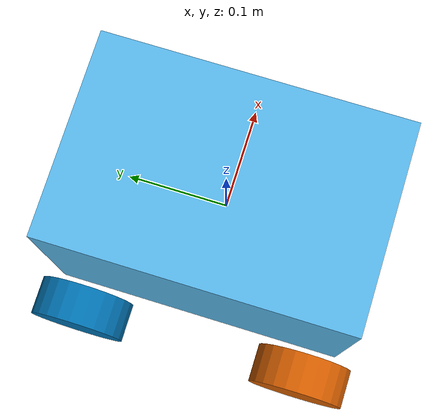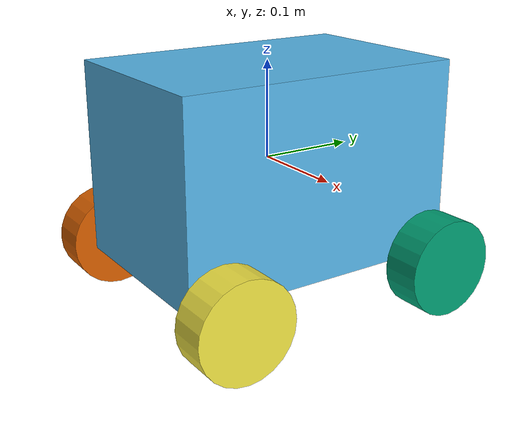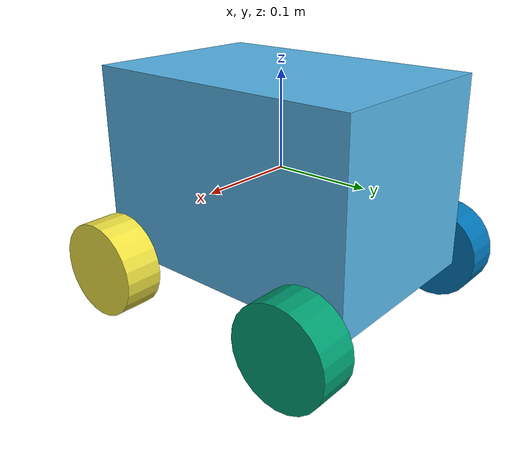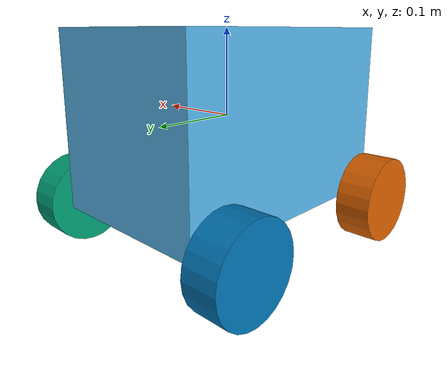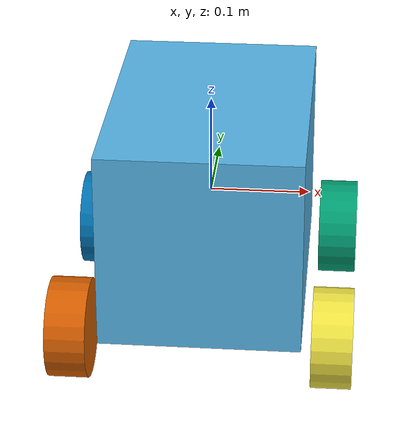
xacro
<?xml version="1.0"?>
<!--
  Robot: treasure_car
  Generated by: LinkForge
  https://github.com/arounamounchili/linkforge
-->
<robot xmlns:xacro="http://ros.org/wiki/xacro" name="treasure_car">
  <!-- Properties -->
  <xacro:include filename="treasure_car_properties.xacro" />
  <!-- ROS 2 Control -->
  <xacro:include filename="treasure_car_ros2_control.xacro" />
  <!-- Links -->
  <link name="IMU_1">
    <inertial>
      <mass value="0.01" />
      <inertia ixx="1e-06" ixy="0" ixz="0" iyy="1e-06" iyz="0" izz="1e-06" />
    </inertial>
    <visual>
      <geometry>
        <box size="0.02 0.03 0.01" />
      </geometry>
    </visual>
    <collision>
      <geometry>
        <box size="0.02 0.03 0.01" />
      </geometry>
    </collision>
  </link>
  <link name="car_body">
    <inertial>
      <mass value="3" />
      <inertia ixx="0.0325" ixy="0" ixz="0" iyy="0.02" iyz="0" izz="0.0325" />
    </inertial>
    <visual>
      <geometry>
        <box size="0.2 0.3 0.2" />
      </geometry>
    </visual>
    <collision>
      <geometry>
        <box size="0.2 0.3 0.2" />
      </geometry>
    </collision>
  </link>
  <link name="left_behind_wheel">
    <inertial>
      <origin xyz="2.364146e-09 0 7.351371e-09" rpy="0 0 0" />
      <mass value="0.5" />
      <inertia ixx="0.000379" ixy="0" ixz="0" iyy="0.000379" iyz="0" izz="0.000625" />
    </inertial>
    <visual>
      <origin xyz="2.364146e-09 0 7.351371e-09" rpy="0 0 0" />
      <geometry>
        <cylinder radius="${wheel_radius}" length="${wheel_length}" />
      </geometry>
    </visual>
    <collision>
      <origin xyz="2.364146e-09 0 7.351371e-09" rpy="0 0 0" />
      <geometry>
        <cylinder radius="${wheel_radius}" length="${wheel_length}" />
      </geometry>
    </collision>
  </link>
  <link name="left_front_wheel">
    <inertial>
      <origin xyz="2.364146e-09 0 7.351371e-09" rpy="0 0 0" />
      <mass value="0.5" />
      <inertia ixx="0.000379" ixy="0" ixz="0" iyy="0.000379" iyz="0" izz="0.000625" />
    </inertial>
    <visual>
      <origin xyz="2.364146e-09 0 7.351371e-09" rpy="0 0 0" />
      <geometry>
        <cylinder radius="${wheel_radius}" length="${wheel_length}" />
      </geometry>
    </visual>
    <collision>
      <origin xyz="2.364146e-09 0 7.351371e-09" rpy="0 0 0" />
      <geometry>
        <cylinder radius="${wheel_radius}" length="${wheel_length}" />
      </geometry>
    </collision>
  </link>
  <link name="right_behind_wheel">
    <inertial>
      <origin xyz="-2.364146e-09 0 7.351371e-09" rpy="0 0 0" />
      <mass value="0.5" />
      <inertia ixx="0.000379" ixy="0" ixz="0" iyy="0.000379" iyz="0" izz="0.000625" />
    </inertial>
    <visual>
      <origin xyz="-2.364146e-09 0 7.351371e-09" rpy="0 0 0" />
      <geometry>
        <cylinder radius="${wheel_radius}" length="${wheel_length}" />
      </geometry>
    </visual>
    <collision>
      <origin xyz="-2.364146e-09 0 7.351371e-09" rpy="0 0 0" />
      <geometry>
        <cylinder radius="${wheel_radius}" length="${wheel_length}" />
      </geometry>
    </collision>
  </link>
  <link name="right_front_wheel">
    <inertial>
      <origin xyz="-2.364146e-09 0 7.351371e-09" rpy="0 0 0" />
      <mass value="0.5" />
      <inertia ixx="0.000379" ixy="0" ixz="0" iyy="0.000379" iyz="0" izz="0.000625" />
    </inertial>
    <visual>
      <origin xyz="-2.364146e-09 0 7.351371e-09" rpy="0 0 0" />
      <geometry>
        <cylinder radius="${wheel_radius}" length="${wheel_length}" />
      </geometry>
    </visual>
    <collision>
      <origin xyz="-2.364146e-09 0 7.351371e-09" rpy="0 0 0" />
      <geometry>
        <cylinder radius="${wheel_radius}" length="${wheel_length}" />
      </geometry>
    </collision>
  </link>
  <!-- Joints -->
  <joint name="IMU_1_joint" type="fixed">
    <parent link="car_body" />
    <child link="IMU_1" />
  </joint>
  <joint name="left_behind_wheel_joint" type="continuous">
    <origin xyz="0.13 0.12 -0.1" rpy="0 1.570796 0" />
    <parent link="car_body" />
    <child link="left_behind_wheel" />
    <axis xyz="1 0 0" />
    <limit effort="10" velocity="1" lower="0" upper="0" />
  </joint>
  <joint name="left_front_wheel_joint" type="continuous">
    <origin xyz="0.13 -0.12 -0.1" rpy="0 1.570796 0" />
    <parent link="car_body" />
    <child link="left_front_wheel" />
    <axis xyz="1 0 0" />
    <limit effort="10" velocity="1" lower="0" upper="0" />
  </joint>
  <joint name="right_behind_wheel_joint" type="continuous">
    <origin xyz="-0.13 0.12 -0.1" rpy="0 1.570796 0" />
    <parent link="car_body" />
    <child link="right_behind_wheel" />
    <axis xyz="1 0 0" />
    <limit effort="10" velocity="1" lower="0" upper="0" />
  </joint>
  <joint name="right_front_wheel_joint" type="continuous">
    <origin xyz="-0.13 -0.12 -0.1" rpy="0 1.570796 0" />
    <parent link="car_body" />
    <child link="right_front_wheel" />
    <axis xyz="1 0 0" />
    <limit effort="10" velocity="1" lower="0" upper="0" />
  </joint>
  <gazebo reference="IMU_1">
    <sensor name="IMU_sensor" type="imu">
      <always_on>true</always_on>
      <update_rate>100</update_rate>
      <visualize>false</visualize>
      <imu />
    </sensor>
  </gazebo>
</robot>

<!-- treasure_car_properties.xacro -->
<!--
  Robot: robot
  Generated by: LinkForge
  https://github.com/arounamounchili/linkforge
-->
<robot xmlns:xacro="http://ros.org/wiki/xacro">
  <!-- Properties -->
  <xacro:property name="wheel_length" value="0.04" />
  <xacro:property name="wheel_radius" value="0.05" />
</robot>
